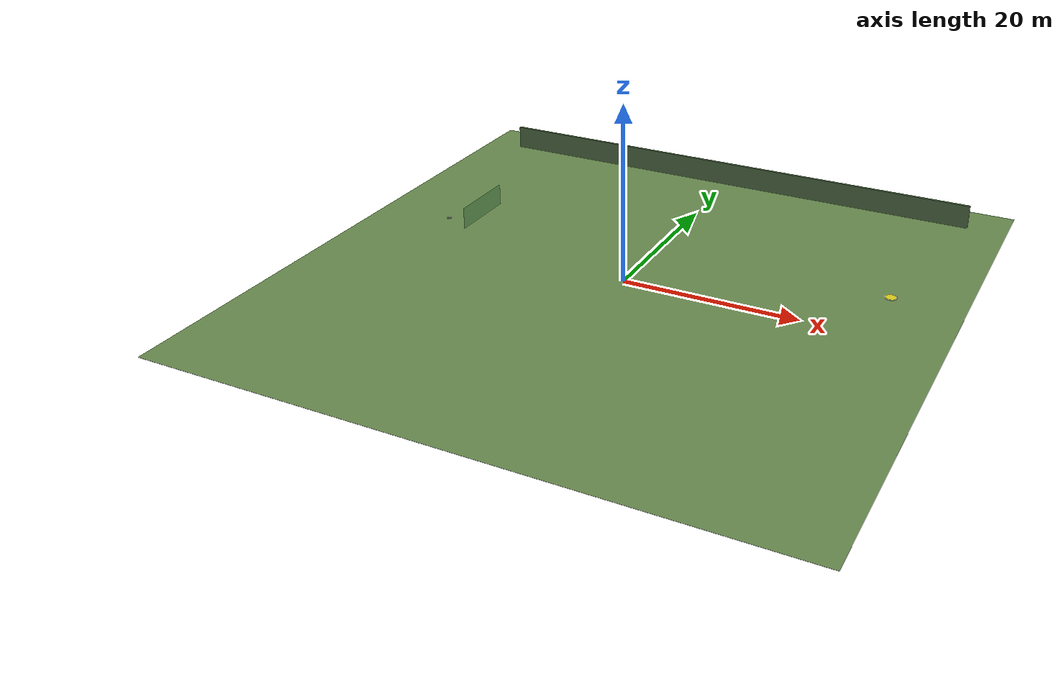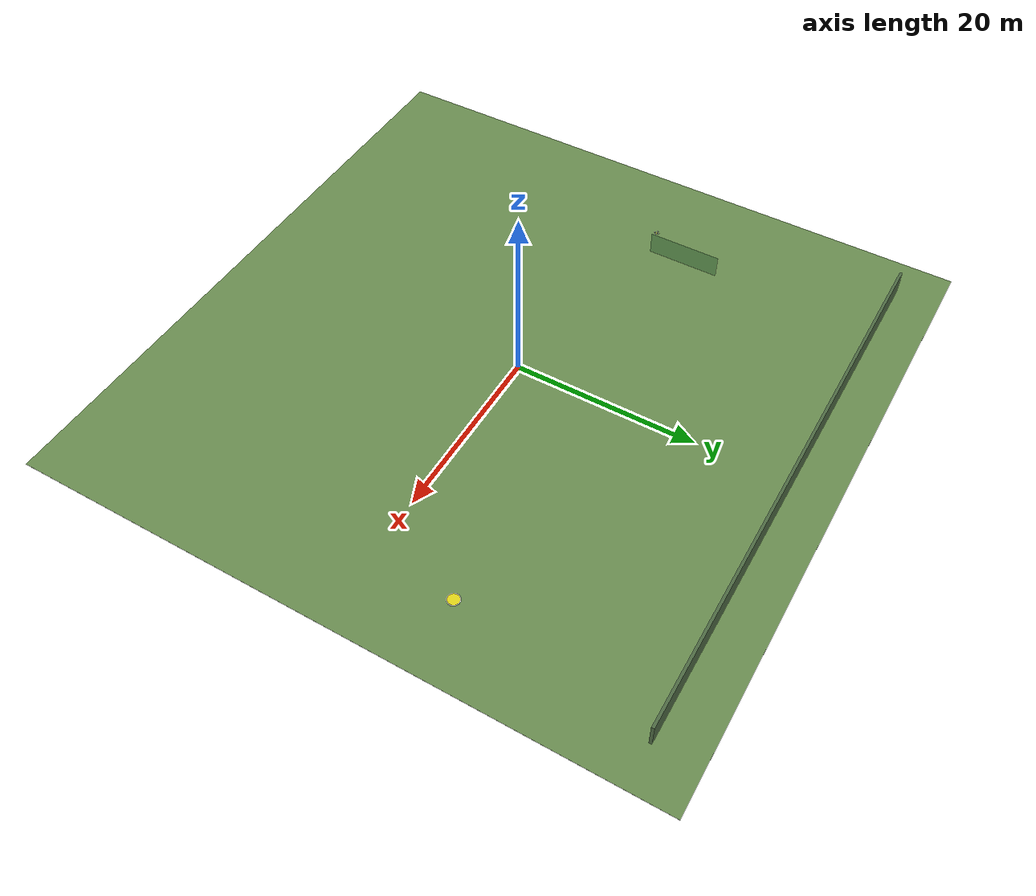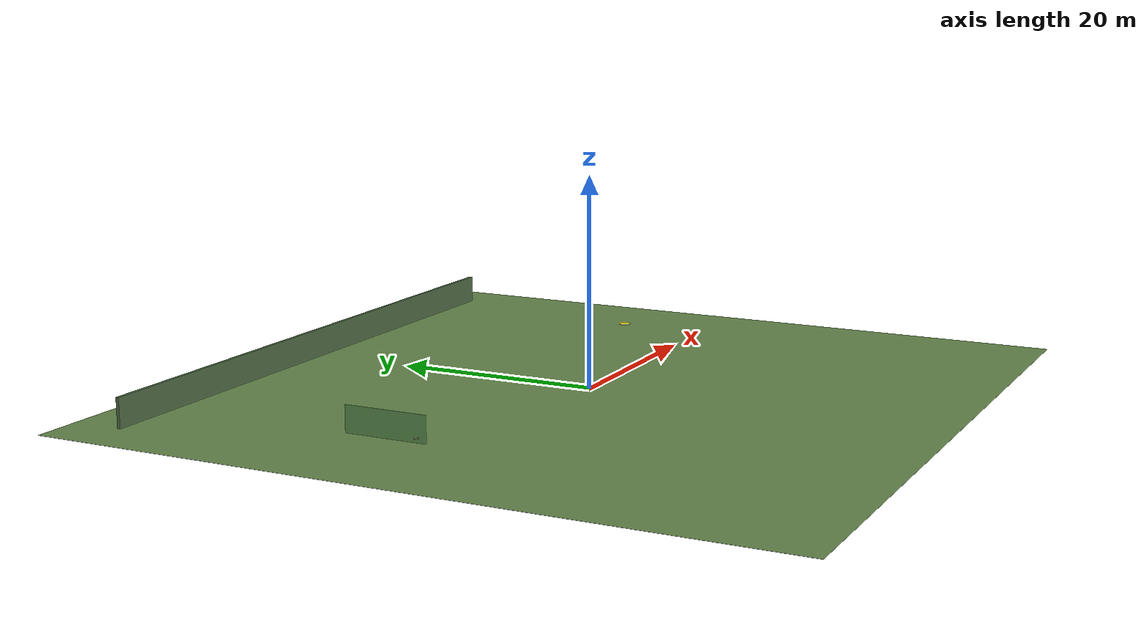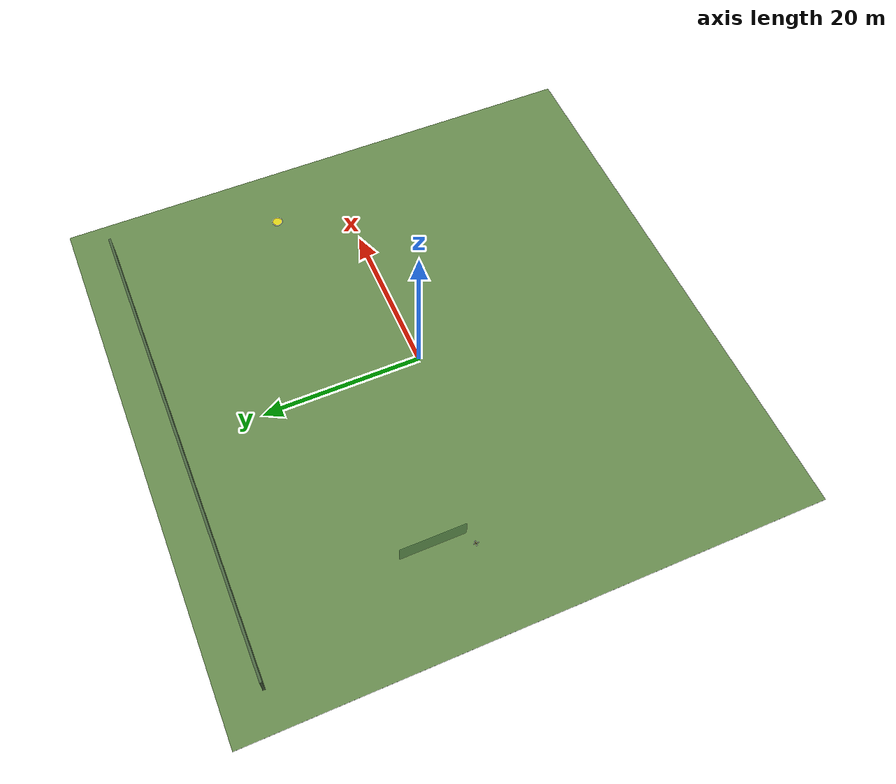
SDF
<sdf version="1.7">
 <world name="zx2026_forest">
  <include><uri>model://sun</uri></include>
  <model name="ground_plane">
   <static>true</static>
   <pose>0.00 0.00 -0.01 0 0 0</pose>
   <link name="link">
    <collision name="col"><geometry><box><size>70.00 70.00 0.02</size></box></geometry></collision>
    <visual name="vis">
     <geometry><box><size>70.00 70.00 0.02</size></box></geometry>
     <material>
      <ambient>0.42 0.56 0.32 1.00</ambient>
      <diffuse>0.42 0.56 0.32 1.00</diffuse>
      <specular>0.2 0.2 0.2 1</specular>
     </material>
    </visual>
   </link>
  </model>
  <model name="fence_n">
   <static>true</static>
   <pose>0.00 30.15 1.40 0 0 0</pose>
   <link name="link">
    <collision name="col"><geometry><box><size>60.90 0.30 2.80</size></box></geometry></collision>
    <visual name="vis">
     <geometry><box><size>60.90 0.30 2.80</size></box></geometry>
     <material>
      <ambient>0.31 0.42 0.27 1.00</ambient>
      <diffuse>0.31 0.42 0.27 1.00</diffuse>
      <specular>0.2 0.2 0.2 1</specular>
     </material>
    </visual>
   </link>
  </model>
  <model name="net_207">
   <static>true</static>
   <pose>-22.80 8.00 1.25 0 0 0</pose>
   <link name="link">
    <collision name="col"><geometry><box><size>0.10 8.00 2.50</size></box></geometry></collision>
    <visual name="vis">
     <geometry><box><size>0.10 8.00 2.50</size></box></geometry>
     <material>
      <ambient>0.20 0.45 0.22 0.45</ambient>
      <diffuse>0.20 0.45 0.22 0.45</diffuse>
      <specular>0.2 0.2 0.2 1</specular>
     </material>
    </visual>
   </link>
  </model>
  <model name="drop_3">
   <static>true</static>
   <pose>27.00 9.00 0.0 0 0 0</pose>
   <link name="platform">
    <collision name="col">
     <geometry><cylinder><radius>0.60</radius><length>0.05</length></cylinder></geometry>
    </collision>
    <visual name="disc">
     <pose>0 0 0.025 0 0 0</pose>
     <geometry><cylinder><radius>0.60</radius><length>0.05</length></cylinder></geometry>
     <material>
      <ambient>0.90 0.85 0.10 1.00</ambient>
      <diffuse>0.90 0.85 0.10 1.00</diffuse>
      <specular>0.2 0.2 0.2 1</specular>
     </material>
    </visual>
    <visual name="rim">
     <pose>0 0 0.01 0 0 0</pose>
     <geometry><cylinder><radius>0.68</radius><length>0.02</length></cylinder></geometry>
     <material>
      <ambient>0.95 0.95 0.95 1.00</ambient>
      <diffuse>0.95 0.95 0.95 1.00</diffuse>
      <specular>0.2 0.2 0.2 1</specular>
     </material>
    </visual>
   </link>
  </model>
  <model name="drone_5">
   <pose>-24.75 3.75 1.0 0 0 0</pose>
   <link name="base_link">
    <inertial>
     <mass>2.0</mass>
     <inertia><ixx>0.04833</ixx><iyy>0.04833</iyy><izz>0.08333</izz><ixy>0</ixy><ixz>0</ixz><iyz>0</iyz></inertia>
    </inertial>
    <collision name="col"><geometry><box><size>0.5 0.5 0.2</size></box></geometry></collision>
    <visual name="chassis">
     <geometry><box><size>0.16 0.16 0.05</size></box></geometry>
     <material>
      <ambient>0.95 0.90 0.30 1.00</ambient>
      <diffuse>0.95 0.90 0.30 1.00</diffuse>
      <specular>0.2 0.2 0.2 1</specular>
     </material>
    </visual>
    <visual name="top">
     <pose>0.000 0.000 0.033 0 0 0.000</pose>
     <geometry><box><size>0.09 0.09 0.015</size></box></geometry>
     <material>
      <ambient>0.16 0.16 0.18 1.00</ambient>
      <diffuse>0.16 0.16 0.18 1.00</diffuse>
      <specular>0.2 0.2 0.2 1</specular>
     </material>
    </visual>
    <visual name="nose">
     <pose>0.085 0.000 0.010 0 0 0.000</pose>
     <geometry><box><size>0.03 0.03 0.035</size></box></geometry>
     <material>
      <ambient>0.95 0.25 0.20 1.00</ambient>
      <diffuse>0.95 0.25 0.20 1.00</diffuse>
      <specular>0.2 0.2 0.2 1</specular>
     </material>
    </visual>
    <visual name="arm0">
     <pose>0.120 0.000 0.010 0 0 0.000</pose>
     <geometry><box><size>0.24 0.024 0.016</size></box></geometry>
     <material>
      <ambient>0.24 0.24 0.26 1.00</ambient>
      <diffuse>0.24 0.24 0.26 1.00</diffuse>
      <specular>0.2 0.2 0.2 1</specular>
     </material>
    </visual>
    <visual name="motor0">
     <pose>0.240 0.000 0.032 0 0 0.000</pose>
     <geometry><cylinder><radius>0.032</radius><length>0.03</length></cylinder></geometry>
     <material>
      <ambient>0.33 0.33 0.35 1.00</ambient>
      <diffuse>0.33 0.33 0.35 1.00</diffuse>
      <specular>0.2 0.2 0.2 1</specular>
     </material>
    </visual>
    <visual name="prop0">
     <pose>0.240 0.000 0.062 0 0 0.000</pose>
     <geometry><cylinder><radius>0.10</radius><length>0.006</length></cylinder></geometry>
     <material>
      <ambient>0.82 0.82 0.84 0.55</ambient>
      <diffuse>0.82 0.82 0.84 0.55</diffuse>
      <specular>0.2 0.2 0.2 1</specular>
     </material>
    </visual>
    <visual name="arm1">
     <pose>-0.120 0.000 0.010 0 0 0.000</pose>
     <geometry><box><size>0.24 0.024 0.016</size></box></geometry>
     <material>
      <ambient>0.24 0.24 0.26 1.00</ambient>
      <diffuse>0.24 0.24 0.26 1.00</diffuse>
      <specular>0.2 0.2 0.2 1</specular>
     </material>
    </visual>
    <visual name="motor1">
     <pose>-0.240 0.000 0.032 0 0 0.000</pose>
     <geometry><cylinder><radius>0.032</radius><length>0.03</length></cylinder></geometry>
     <material>
      <ambient>0.33 0.33 0.35 1.00</ambient>
      <diffuse>0.33 0.33 0.35 1.00</diffuse>
      <specular>0.2 0.2 0.2 1</specular>
     </material>
    </visual>
    <visual name="prop1">
     <pose>-0.240 0.000 0.062 0 0 0.000</pose>
     <geometry><cylinder><radius>0.10</radius><length>0.006</length></cylinder></geometry>
     <material>
      <ambient>0.82 0.82 0.84 0.55</ambient>
      <diffuse>0.82 0.82 0.84 0.55</diffuse>
      <specular>0.2 0.2 0.2 1</specular>
     </material>
    </visual>
    <visual name="arm2">
     <pose>0.000 0.120 0.010 0 0 0.000</pose>
     <geometry><box><size>0.024 0.24 0.016</size></box></geometry>
     <material>
      <ambient>0.24 0.24 0.26 1.00</ambient>
      <diffuse>0.24 0.24 0.26 1.00</diffuse>
      <specular>0.2 0.2 0.2 1</specular>
     </material>
    </visual>
    <visual name="motor2">
     <pose>0.000 0.240 0.032 0 0 0.000</pose>
     <geometry><cylinder><radius>0.032</radius><length>0.03</length></cylinder></geometry>
     <material>
      <ambient>0.33 0.33 0.35 1.00</ambient>
      <diffuse>0.33 0.33 0.35 1.00</diffuse>
      <specular>0.2 0.2 0.2 1</specular>
     </material>
    </visual>
    <visual name="prop2">
     <pose>0.000 0.240 0.062 0 0 0.000</pose>
     <geometry><cylinder><radius>0.10</radius><length>0.006</length></cylinder></geometry>
     <material>
      <ambient>0.82 0.82 0.84 0.55</ambient>
      <diffuse>0.82 0.82 0.84 0.55</diffuse>
      <specular>0.2 0.2 0.2 1</specular>
     </material>
    </visual>
    <visual name="arm3">
     <pose>0.000 -0.120 0.010 0 0 0.000</pose>
     <geometry><box><size>0.024 0.24 0.016</size></box></geometry>
     <material>
      <ambient>0.24 0.24 0.26 1.00</ambient>
      <diffuse>0.24 0.24 0.26 1.00</diffuse>
      <specular>0.2 0.2 0.2 1</specular>
     </material>
    </visual>
    <visual name="motor3">
     <pose>0.000 -0.240 0.032 0 0 0.000</pose>
     <geometry><cylinder><radius>0.032</radius><length>0.03</length></cylinder></geometry>
     <material>
      <ambient>0.33 0.33 0.35 1.00</ambient>
      <diffuse>0.33 0.33 0.35 1.00</diffuse>
      <specular>0.2 0.2 0.2 1</specular>
     </material>
    </visual>
    <visual name="prop3">
     <pose>0.000 -0.240 0.062 0 0 0.000</pose>
     <geometry><cylinder><radius>0.10</radius><length>0.006</length></cylinder></geometry>
     <material>
      <ambient>0.82 0.82 0.84 0.55</ambient>
      <diffuse>0.82 0.82 0.84 0.55</diffuse>
      <specular>0.2 0.2 0.2 1</specular>
     </material>
    </visual>
   </link>
   <plugin name="drone_vel_5" filename="libdrone_vel_plugin.so">
    <drone_id>5</drone_id>
    <kp>3.0</kp>
    <g>9.81</g>
   </plugin>
  </model>
 </world>
</sdf>
